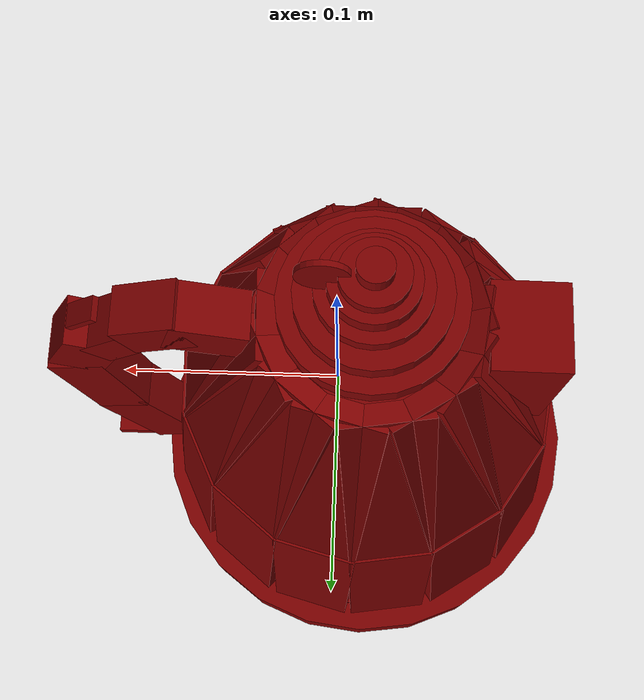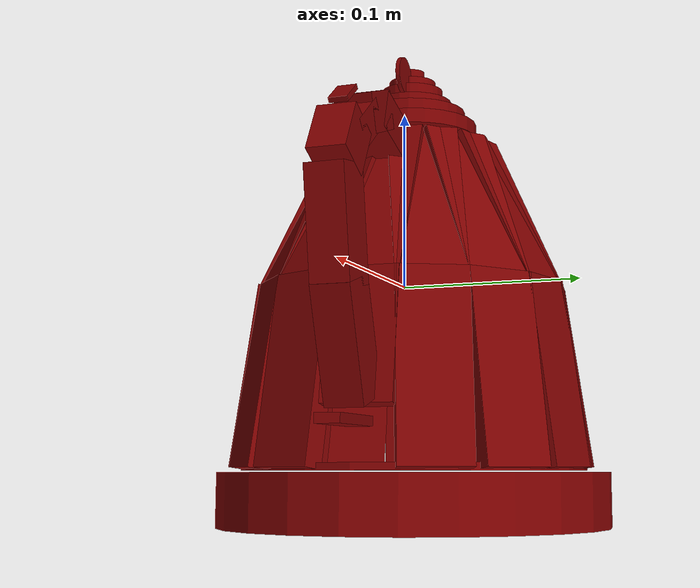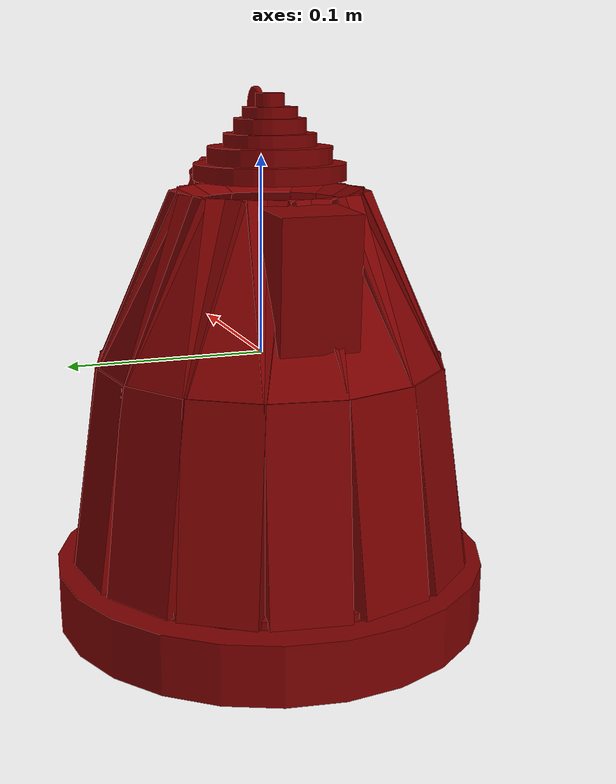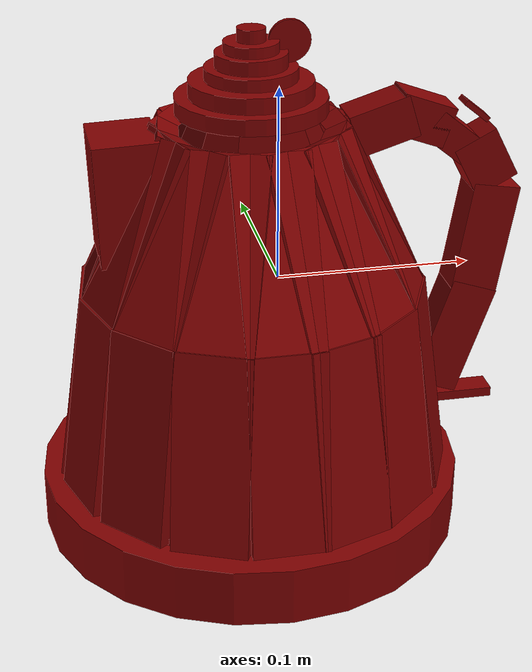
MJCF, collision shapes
<?xml version='1.0' encoding='UTF-8'?>
<mujoco model="model">
  <compiler angle="radian"/>
  <asset>
    <mesh file="visuals/Body001.obj" name="Body001_vis"/>
    <mesh file="visuals/Button001.obj" name="Button001_vis"/>
    <mesh file="visuals/Handle001.obj" name="Handle001_vis"/>
    <mesh file="visuals/Lever001.obj" name="Lever001_vis"/>
    <mesh file="visuals/Lid001.obj" name="Lid001_vis"/>
    <texture file="visuals/T_BC001.png" name="Body001_material" type="2d"/>
    <material name="Body001_material" rgba="1 1 1 1.0" texture="Body001_material" shininess="0.5" specular="0.3103448502657381"/>
    <texture file="visuals/T_BC001.png" name="Handle001_material" type="2d"/>
    <material name="Handle001_material" rgba="1 1 1 1.0" texture="Handle001_material" shininess="0.5" specular="0.3103448502657381"/>
    <texture file="visuals/T_BC001.png" name="Button001_material" type="2d"/>
    <material name="Button001_material" rgba="1 1 1 1.0" texture="Button001_material" shininess="0.5" specular="0.3103448502657381"/>
    <texture file="visuals/T_BC001.png" name="Lever001_material" type="2d"/>
    <material name="Lever001_material" rgba="1 1 1 1.0" texture="Lever001_material" shininess="0.5" specular="0.3103448502657381"/>
    <texture file="visuals/T_BC001.png" name="Lid001_material" type="2d"/>
    <material name="Lid001_material" rgba="1 1 1 1.0" texture="Lid001_material" shininess="0.5" specular="0.3103448502657381"/>
  </asset>
  <default>
    <default class="visual">
      <geom conaffinity="0" contype="0" group="1" type="mesh"/>
    </default>
    <default class="collision">
      <geom group="0" rgba="0.5 0 0 0.5"/>
    </default>
    <default class="spawn">
      <geom group="0" rgba="1 1 1 0.5" contype="0" conaffinity="0"/>
      <site group="0" rgba="1 1 1 0.5"/>
    </default>
    <default class="region">
      <geom group="1" conaffinity="0" contype="0" rgba="0 1 0 0"/>
    </default>
  </default>
  <worldbody>
    <body>
      <body name="object">
        <geom mesh="Body001_vis" type="mesh" solimp="0.998 0.998 0.001" solref="0.001 1" density="100" friction="0.95 0.3 0.1" class="visual" material="Body001_material"/>
        <geom class="collision" type="cylinder" pos="-0.01461932621896267 0.0007243109866976738 -0.11814795434474945" size="0.11004693806171417 0.015182497911155224" quat="1.0 0.0 0.0 0.0"/>
        <body name="Handle001">
          <joint axis="0.0 0.0 1.0" pos="0.006025180220603943 -2.5331974029541016e-07 -0.004361510276794434" limited="true" name="Handle001_joint" range="0.0 0.1" type="slide" damping="1" frictionloss="1" armature=".01" stiffness="0.05"/>
          <geom mesh="Handle001_vis" type="mesh" solimp="0.998 0.998 0.001" solref="0.001 1" density="100" friction="0.95 0.3 0.1" class="visual" material="Handle001_material"/>
          <geom class="collision" type="cylinder" pos="-0.01461932621896267 0.0007243109866976738 -0.10015259683132172" size="0.0968940481543541 0.0019463932840153575" quat="1.0 0.0 0.0 0.0"/>
          <geom class="collision" type="box" pos="-0.013354918919503689 -0.06037257984280586 0.03936608135700226" size="0.01927150972187519 0.0056108939461410046 0.047147102653980255" quat="0.9755426645278931 -0.21981018781661987 -0.0 0.0"/>
          <geom class="collision" type="box" pos="-0.013354918919503689 -0.0878482535481453 -0.050580400973558426" size="0.01927150972187519 0.005610893480479717 0.05105685070157051" quat="0.9974405765533447 -0.07150019705295563 -0.0 0.0"/>
          <geom class="collision" type="box" pos="-0.04784507676959038 -0.08092913031578064 -0.050580404698848724" size="0.01927150972187519 0.005610893480479717 0.05105685070157051" quat="0.9772441983222961 -0.07005245238542557 0.0143154701218009 -0.1997033953666687"/>
          <geom class="collision" type="box" pos="-0.03706572949886322 -0.05565626174211502 0.03936608135700226" size="0.01927150972187519 0.005610893480479717 0.04714709892868996" quat="0.9557897448539734 -0.21535931527614594 0.04400944337248802 -0.1953190416097641"/>
          <geom class="collision" type="box" pos="-0.05806240439414978 -0.040918417274951935 0.03936608135700226" size="0.01927150972187519 0.005610893480479717 0.04714709892868996" quat="0.8924745917320251 -0.20109312236309052 0.08875828236341476 -0.39391955733299255"/>
          <geom class="collision" type="box" pos="-0.07836207002401352 -0.059434227645397186 -0.050580404698848724" size="0.01927150972187519 0.005610893480479717 0.05105685070157051" quat="0.912507951259613 -0.06541191786527634 0.028871437534689903 -0.4027617275714874"/>
          <geom class="collision" type="box" pos="-0.09745042026042938 -0.02642616257071495 -0.050580404698848724" size="0.01927150972187519 0.005610893480479717 0.05105685070157051" quat="0.8033521771430969 -0.05758723244071007 0.04237911477684975 -0.5911962389945984"/>
          <geom class="collision" type="box" pos="-0.07121779024600983 -0.01825539581477642 0.03936608135700226" size="0.01927150972187519 0.005610893480479717 0.04714709892868996" quat="0.7857152819633484 -0.1770380139350891 0.1302843540906906 -0.578217089176178"/>
          <geom class="collision" type="box" pos="-0.07348096370697021 0.008224783465266228 0.03936608135700226" size="0.01927150972187519 0.005610893480479717 0.04714709892868996" quat="0.6391790509223938 -0.14402034878730774 0.1660560518503189 -0.7369760274887085"/>
          <geom class="collision" type="box" pos="-0.10068050026893616 0.01211029663681984 -0.050580404698848724" size="0.01927150972187519 0.005610893480479717 0.05105685070157051" quat="0.6535266637802124 -0.04684718698263168 0.05401499196887016 -0.75351881980896"/>
          <geom class="collision" type="box" pos="-0.08778393268585205 0.047165397554636 -0.050580404698848724" size="0.01927150785923004 0.005610893480479717 0.05105685070157051" quat="0.4783940017223358 -0.034293025732040405 0.06273964792490005 -0.8752296566963196"/>
          <geom class="collision" type="box" pos="-0.06465733051300049 0.03233056887984276 0.03936608135700226" size="0.01927150785923004 0.005610893480479717 0.04714709892868996" quat="0.46789127588272095 -0.1054256483912468 0.19287791848182678 -0.8560147881507874"/>
          <geom class="collision" type="box" pos="-0.04682711511850357 0.050453394651412964 0.03936608135700226" size="0.01927150972187519 0.005610893480479717 0.04714709892868996" quat="0.2771659791469574 -0.06245126575231552 0.2107517570257187 -0.9353408813476562"/>
          <geom class="collision" type="box" pos="-0.06179620698094368 0.07349331676959991 -0.050580404698848724" size="0.01927150972187519 0.005610893480479717 0.05105685070157051" quat="0.28338751196861267 -0.020314252004027367 0.06855370104312897 -0.9563363790512085"/>
          <geom class="collision" type="box" pos="-0.027007251977920532 0.08683008700609207 -0.050580404698848724" size="0.01927150972187519 0.0056108939461410046 0.05105685070157051" quat="0.07414495199918747 -0.005314982030540705 0.0713023841381073 -0.9946810007095337"/>
          <geom class="collision" type="box" pos="-0.022933734580874443 0.05965806543827057 0.03936608135700226" size="0.01927150972187519 0.005610893480479717 0.04714709892868996" quat="0.07251717150211334 -0.01633962243795395 0.21920190751552582 -0.9728436470031738"/>
          <geom class="collision" type="box" pos="0.0017953524366021156 0.05835829675197601 0.03936608135700226" size="0.01927150972187519 0.005610893480479717 0.04714709892868996" quat="0.12853960692882538 -0.02896265871822834 -0.21789368987083435 0.9670372605323792"/>
          <geom class="collision" type="box" pos="0.008972728624939919 0.08487993478775024 -0.050580404698848724" size="0.01927150972187519 0.005610893480479717 0.05105685070157051" quat="0.1314249336719513 -0.009421017952263355 -0.07087679207324982 0.9887442588806152"/>
          <geom class="collision" type="box" pos="0.04186876863241196 0.06806397438049316 -0.050580404698848724" size="0.01927150972187519 0.005610893480479717 0.05105685070157051" quat="0.3363957703113556 -0.024114081636071205 -0.0673111230134964 0.9390024542808533"/>
          <geom class="collision" type="box" pos="0.02442174404859543 0.046838659793138504 0.03936608135700226" size="0.01927150972187519 0.005610893480479717 0.04714709892868996" quat="0.3290105164051056 -0.07413291931152344 -0.20693181455135345 0.9183875322341919"/>
          <geom class="collision" type="box" pos="0.040716614574193954 0.026209238916635513 0.03936608135700226" size="0.01927150972187519 0.005610893480479717 0.04714709892868996" quat="0.5210679769515991 -0.11740747839212418 -0.18582776188850403 0.8247252106666565"/>
          <geom class="collision" type="box" pos="0.0655301958322525 0.03800748661160469 -0.050580404698848724" size="0.01927150972187519 0.005610893480479717 0.05105685070157051" quat="0.5327644348144531 -0.03819049522280693 -0.060446351766586304 0.8432376980781555"/>
          <geom class="collision" type="box" pos="0.07188587635755539 0.0030217221938073635 -0.035045772790908813" size="0.01927151158452034 0.0056108939461410046 0.035361744463443756" quat="0.6940592527389526 -0.04975270852446556 -0.05135120823979378 0.716358482837677"/>
          <geom class="collision" type="box" pos="0.04666148126125336 0.0022239089012145996 0.03936608135700226" size="0.01927151158452034 0.005610893480479717 0.04714709892868996" quat="0.6788218021392822 -0.15295268595218658 -0.15786685049533844 0.7006314992904663"/>
          <geom class="collision" type="box" pos="0.042037226259708405 -0.023271363228559494 0.03936608135700226" size="0.01927151158452034 0.005610893480479717 0.04714709892868996" quat="0.813357949256897 -0.18326649069786072 -0.12136665731668472 0.5386393666267395"/>
          <geom class="collision" type="box" pos="0.06733403354883194 -0.03399444743990898 -0.050580404698848724" size="0.01927150972187519 0.005610893480479717 0.05105685070157051" quat="0.8316153287887573 -0.05961323529481888 -0.03947834670543671 0.5507301092147827"/>
          <geom class="collision" type="box" pos="0.045532673597335815 -0.06490273028612137 -0.050580404698848724" size="0.01927150972187519 0.005610893480479717 0.05105685070157051" quat="0.9306759834289551 -0.06671427190303802 -0.025719348341226578 0.3587895333766937"/>
          <geom class="collision" type="box" pos="0.02708921581506729 -0.044537290930747986 0.03936608135700226" size="0.01927150972187519 0.005610893480479717 0.04714709892868996" quat="0.9102438688278198 -0.20509688556194305 -0.07906793057918549 0.3509126305580139"/>
          <geom class="collision" type="box" pos="0.007277412340044975 -0.05662263557314873 0.03936609625816345" size="0.01927150972187519 0.005610893480479717 0.047147102653980255" quat="0.9607177376747131 -0.21646980941295624 -0.03817503899335861 0.16942518949508667"/>
          <geom class="collision" type="box" pos="0.016675930470228195 -0.08244085311889648 -0.050580404698848724" size="0.01927151158452034 0.005610893480479717 0.05105685070157051" quat="0.9822828769683838 -0.07041365653276443 -0.012417641468346119 0.17322824895381927"/>
          <geom class="collision" type="box" pos="-0.07533188164234161 0.00254449644125998 0.050541434437036514" size="0.016298513859510422 0.01895124651491642 0.030848830938339233" quat="0.9998403787612915 3.754018429447115e-09 -0.017866216599941254 2.0973017100800462e-08"/>
          <geom class="collision" type="box" pos="0.10458327829837799 0.00278834393247962 0.056553855538368225" size="0.013974262401461601 0.010425304993987083 0.011696386151015759" quat="0.8557707667350769 0.0 0.51735520362854 0.0"/>
          <geom class="collision" type="box" pos="0.051533207297325134 0.00278834393247962 0.0790233463048935" size="0.015717824921011925 0.010425304993987083 0.01086315419524908" quat="0.9884176254272461 0.0 -0.15175822377204895 0.0"/>
          <geom class="collision" type="box" pos="0.07131754606962204 0.00278834393247962 0.08053111284971237" size="0.014116673730313778 0.010425304993987083 0.010394532233476639" quat="0.9849125742912292 0.0 0.1730526238679886 0.0"/>
          <geom class="collision" type="box" pos="0.10692184418439865 0.00278834393247962 0.014505917206406593" size="0.029614944010972977 0.010425304993987083 0.012280195951461792" quat="0.6486070156097412 0.0 0.7611234784126282 0.0"/>
          <geom class="collision" type="box" pos="0.09363839030265808 0.00278834393247962 -0.039925891906023026" size="0.030212007462978363 0.010425304993987083 0.012280197814106941" quat="0.582497775554657 0.0 0.8128322958946228 0.0"/>
          <geom class="collision" type="box" pos="0.08776570111513138 0.002788345329463482 0.06953726708889008" size="0.014116673730313778 0.010425304993987083 0.008028846234083176" quat="0.9435935020446777 -3.7857370571714455e-09 0.3311062157154083 2.154616574046031e-08"/>
          <body name="Button001">
            <joint axis="-0.6293202638626099 0.0 -0.7771461606025696" pos="0.09966688603162766 0.0027082753367722034 0.08179624378681183" limited="true" name="Button001_joint" range="0.0 0.0015" type="slide" damping="1" frictionloss="1" armature=".01" stiffness="0.05" springref="-0.8"/>
            <geom mesh="Button001_vis" type="mesh" solimp="0.998 0.998 0.001" solref="0.001 1" density="100" friction="0.95 0.3 0.1" class="visual" material="Button001_material"/>
            <geom class="collision" type="box" pos="0.09987294673919678 0.002708274871110916 0.08204381167888641" size="0.007922406308352947 0.005134806036949158 0.0014202957972884178" quat="0.9435935020446777 -3.7857370571714455e-09 0.3311062157154083 2.154616574046031e-08"/>
          </body>
          <body name="Lever001">
            <joint axis="0.0 0.0 -1.0" pos="0.09705869108438492 0.003606777172535658 -0.07823503017425537" limited="true" name="Lever001_joint" range="0.0 0.01" type="slide" damping="1" frictionloss="1" armature=".01" stiffness="1" springref="-0.4"/>
            <geom mesh="Lever001_vis" type="mesh" solimp="0.998 0.998 0.001" solref="0.001 1" density="100" friction="0.95 0.3 0.1" class="visual" material="Lever001_material"/>
            <geom class="collision" type="box" pos="0.097059 0.003607 -0.078235" size="0.020967 0.006585 0.002514"/>
          </body>
          <body name="Lid001">
            <joint axis="0.0 1.0 0.0" pos="0.027506254613399506 -2.7567148208618164e-07 0.08271406590938568" limited="true" name="Lid001_joint" range="0.0 1.3962634015954636" type="hinge" damping="1" frictionloss="1" armature=".01" stiffness="0.05"/>
            <geom mesh="Lid001_vis" type="mesh" solimp="0.998 0.998 0.001" solref="0.001 1" density="100" friction="0.95 0.3 0.1" class="visual" material="Lid001_material"/>
            <geom class="collision" type="cylinder" pos="-0.013670741580426693 -2.7567148208618164e-07 0.09330868721008301" size="0.037384744733572006 0.004005928058177233" quat="1.0 0.0 0.0 0.0"/>
            <geom class="collision" type="cylinder" pos="-0.013670741580426693 -2.7567148208618164e-07 0.10119523853063583" size="0.03063269518315792 0.004041273146867752" quat="1.0 0.0 0.0 0.0"/>
            <geom class="collision" type="cylinder" pos="-0.013670741580426693 -2.7567148208618164e-07 0.10837311297655106" size="0.022812068462371826 0.0030095227994024754" quat="1.0 0.0 0.0 0.0"/>
            <geom class="collision" type="cylinder" pos="-0.013670741580426693 -2.7567148208618164e-07 0.11487813293933868" size="0.017764342948794365 0.0035840673372149467" quat="1.0 0.0 0.0 0.0"/>
            <geom class="collision" type="cylinder" pos="-0.013670741580426693 -2.7567148208618164e-07 0.12095686793327332" size="0.01356508582830429 0.0027368408627808094" quat="1.0 0.0 0.0 0.0"/>
            <geom class="collision" type="cylinder" pos="-0.013670741580426693 -2.7567148208618164e-07 0.12683629989624023" size="0.007063134573400021 0.0032757692970335484" quat="1.0 0.0 0.0 0.0"/>
            <geom class="collision" type="cylinder" pos="0.005034658592194319 0.001037760404869914 0.12239812314510345" size="0.01044171117246151 0.001178942620754242" quat="0.7071068286895752 0.7071067690849304 -1.5700924318127872e-16 -5.9269340452702814e-24"/>
          </body>
        </body>
        <geom class="region" name="reg_main" type="box" pos="1.862645149230957e-09 0.0 0.0" size="0.12172295898199081 0.10804611444473267 0.1327790915966034"/>
      </body>
    </body>
  </worldbody>
  <actuator>
    <motor name="Handle001_joint_actuator" joint="Handle001_joint" gear="10"/>
    <motor name="Button001_joint_actuator" joint="Button001_joint" gear="0.5"/>
    <motor name="Lever001_joint_actuator" joint="Lever001_joint" gear="0.5"/>
    <motor name="Lid001_joint_actuator" joint="Lid001_joint" gear="0.5"/>
  </actuator>
</mujoco>
